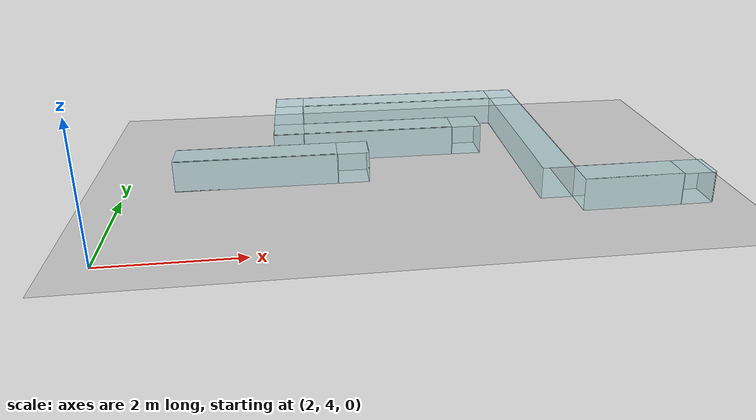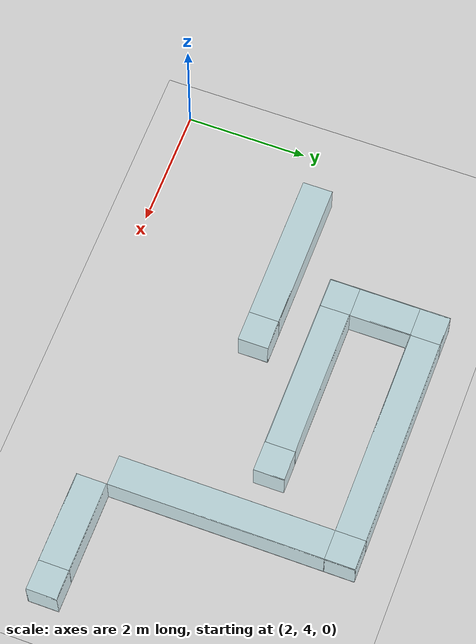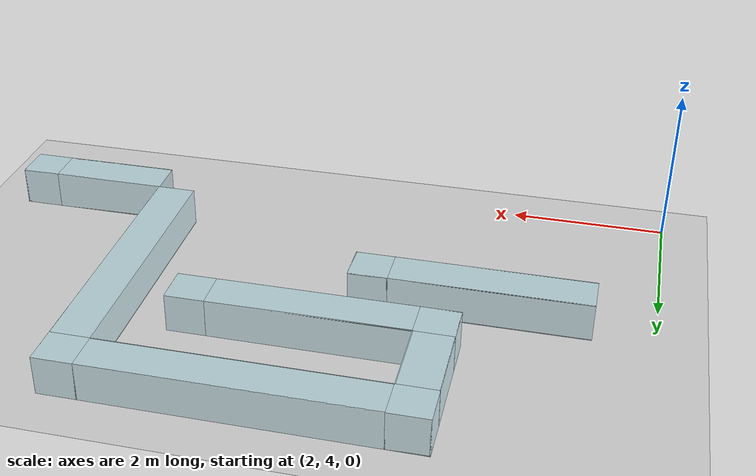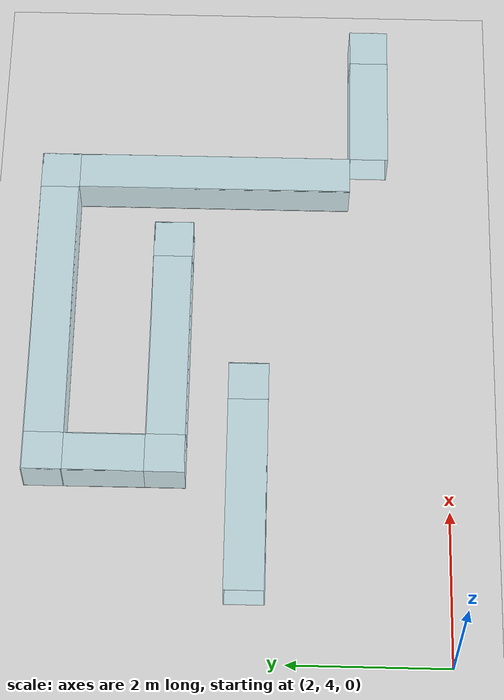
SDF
<sdf version="1.8">
 <world name="demo">
  <model name="ground_plane">
   <static>true</static>
   <link name="link">
    <collision name="collision">
     <geometry><plane><normal>0 0 1</normal><size>100 100</size></plane></geometry>
    </collision>
    <visual name="visual">
     <geometry><plane><normal>0 0 1</normal><size>100 100</size></plane></geometry>
     <material>
      <ambient>0.8 0.8 0.8 1</ambient>
      <diffuse>0.8 0.8 0.8 1</diffuse>
      <specular>0.8 0.8 0.8 1</specular>
     </material>
    </visual>
   </link>
  </model>
  <model name="ground_plane">
   <static>true</static>
   <link name="link">
    <collision name="collision">
     <geometry><plane><normal>0 0 1</normal><size>100 100</size></plane></geometry>
    </collision>
    <visual name="visual">
     <geometry><plane><normal>0 0 1</normal><size>100 100</size></plane></geometry>
     <material>
      <ambient>0.6 0.85 0.9 0.4</ambient>
      <diffuse>0.6 0.85 0.9 0.4</diffuse>
      <specular>0.1 0.1 0.1 1</specular>
      <emissive>0 0 0 1</emissive>
     </material>
    </visual>
   </link>
  </model>
  <model name="T15">
   <pose>4.000000 6.500000 0.250000 0.000000 0.000000 0.000000</pose>
   <static>true</static>
   <link name="link">
    <collision name="col_side_posY">
     <pose>0.000000 0.245000 0.000000 0.000000 0.000000 0.000000</pose>
     <geometry><box><size>2.500000 0.010000 0.500000</size></box></geometry>
    </collision>
    <visual name="vis_col_side_posY">
     <pose>0.000000 0.245000 0.000000 0.000000 0.000000 0.000000</pose>
     <geometry><box><size>2.500000 0.010000 0.500000</size></box></geometry>
     <material>
      <ambient>0.6 0.85 0.9 0.4</ambient>
      <diffuse>0.6 0.85 0.9 0.4</diffuse>
      <specular>0.1 0.1 0.1 1</specular>
      <emissive>0 0 0 1</emissive>
     </material>
    </visual>
    <collision name="col_side_negY">
     <pose>0.000000 -0.245000 0.000000 0.000000 0.000000 0.000000</pose>
     <geometry><box><size>2.500000 0.010000 0.500000</size></box></geometry>
    </collision>
    <visual name="vis_col_side_negY">
     <pose>0.000000 -0.245000 0.000000 0.000000 0.000000 0.000000</pose>
     <geometry><box><size>2.500000 0.010000 0.500000</size></box></geometry>
     <material>
      <ambient>0.6 0.85 0.9 0.4</ambient>
      <diffuse>0.6 0.85 0.9 0.4</diffuse>
      <specular>0.1 0.1 0.1 1</specular>
      <emissive>0 0 0 1</emissive>
     </material>
    </visual>
    <collision name="col_top">
     <pose>0.000000 0.000000 0.245000 0.000000 0.000000 0.000000</pose>
     <geometry><box><size>2.500000 0.500000 0.010000</size></box></geometry>
    </collision>
    <visual name="vis_col_top">
     <pose>0.000000 0.000000 0.245000 0.000000 0.000000 0.000000</pose>
     <geometry><box><size>2.500000 0.500000 0.010000</size></box></geometry>
     <material>
      <ambient>0.6 0.85 0.9 0.4</ambient>
      <diffuse>0.6 0.85 0.9 0.4</diffuse>
      <specular>0.1 0.1 0.1 1</specular>
      <emissive>0 0 0 1</emissive>
     </material>
    </visual>
    <collision name="col_bottom">
     <pose>0.000000 0.000000 -0.245000 0.000000 0.000000 0.000000</pose>
     <geometry><box><size>2.500000 0.500000 0.010000</size></box></geometry>
    </collision>
    <visual name="vis_col_bottom">
     <pose>0.000000 0.000000 -0.245000 0.000000 0.000000 0.000000</pose>
     <geometry><box><size>2.500000 0.500000 0.010000</size></box></geometry>
     <material>
      <ambient>0.6 0.85 0.9 0.4</ambient>
      <diffuse>0.6 0.85 0.9 0.4</diffuse>
      <specular>0.1 0.1 0.1 1</specular>
      <emissive>0 0 0 1</emissive>
     </material>
    </visual>
   </link>
  </model>
  <model name="T19">
   <pose>6.000000 7.500000 0.250000 0.000000 0.000000 0.000000</pose>
   <static>true</static>
   <link name="link">
    <collision name="col_side_posY">
     <pose>0.000000 0.245000 0.000000 0.000000 0.000000 0.000000</pose>
     <geometry><box><size>2.500000 0.010000 0.500000</size></box></geometry>
    </collision>
    <visual name="vis_col_side_posY">
     <pose>0.000000 0.245000 0.000000 0.000000 0.000000 0.000000</pose>
     <geometry><box><size>2.500000 0.010000 0.500000</size></box></geometry>
     <material>
      <ambient>0.6 0.85 0.9 0.4</ambient>
      <diffuse>0.6 0.85 0.9 0.4</diffuse>
      <specular>0.1 0.1 0.1 1</specular>
      <emissive>0 0 0 1</emissive>
     </material>
    </visual>
    <collision name="col_side_negY">
     <pose>0.000000 -0.245000 0.000000 0.000000 0.000000 0.000000</pose>
     <geometry><box><size>2.500000 0.010000 0.500000</size></box></geometry>
    </collision>
    <visual name="vis_col_side_negY">
     <pose>0.000000 -0.245000 0.000000 0.000000 0.000000 0.000000</pose>
     <geometry><box><size>2.500000 0.010000 0.500000</size></box></geometry>
     <material>
      <ambient>0.6 0.85 0.9 0.4</ambient>
      <diffuse>0.6 0.85 0.9 0.4</diffuse>
      <specular>0.1 0.1 0.1 1</specular>
      <emissive>0 0 0 1</emissive>
     </material>
    </visual>
    <collision name="col_top">
     <pose>0.000000 0.000000 0.245000 0.000000 0.000000 0.000000</pose>
     <geometry><box><size>2.500000 0.500000 0.010000</size></box></geometry>
    </collision>
    <visual name="vis_col_top">
     <pose>0.000000 0.000000 0.245000 0.000000 0.000000 0.000000</pose>
     <geometry><box><size>2.500000 0.500000 0.010000</size></box></geometry>
     <material>
      <ambient>0.6 0.85 0.9 0.4</ambient>
      <diffuse>0.6 0.85 0.9 0.4</diffuse>
      <specular>0.1 0.1 0.1 1</specular>
      <emissive>0 0 0 1</emissive>
     </material>
    </visual>
    <collision name="col_bottom">
     <pose>0.000000 0.000000 -0.245000 0.000000 0.000000 0.000000</pose>
     <geometry><box><size>2.500000 0.500000 0.010000</size></box></geometry>
    </collision>
    <visual name="vis_col_bottom">
     <pose>0.000000 0.000000 -0.245000 0.000000 0.000000 0.000000</pose>
     <geometry><box><size>2.500000 0.500000 0.010000</size></box></geometry>
     <material>
      <ambient>0.6 0.85 0.9 0.4</ambient>
      <diffuse>0.6 0.85 0.9 0.4</diffuse>
      <specular>0.1 0.1 0.1 1</specular>
      <emissive>0 0 0 1</emissive>
     </material>
    </visual>
   </link>
  </model>
  <model name="T20">
   <pose>4.500000 8.250000 0.250000 0.000000 0.000000 0.000000</pose>
   <static>true</static>
   <link name="link">
    <collision name="col_side_posX">
     <pose>0.245000 0.000000 0.000000 0.000000 0.000000 0.000000</pose>
     <geometry><box><size>0.010000 1.000000 0.500000</size></box></geometry>
    </collision>
    <visual name="vis_col_side_posX">
     <pose>0.245000 0.000000 0.000000 0.000000 0.000000 0.000000</pose>
     <geometry><box><size>0.010000 1.000000 0.500000</size></box></geometry>
     <material>
      <ambient>0.6 0.85 0.9 0.4</ambient>
      <diffuse>0.6 0.85 0.9 0.4</diffuse>
      <specular>0.1 0.1 0.1 1</specular>
      <emissive>0 0 0 1</emissive>
     </material>
    </visual>
    <collision name="col_side_negX">
     <pose>-0.245000 0.000000 0.000000 0.000000 0.000000 0.000000</pose>
     <geometry><box><size>0.010000 1.000000 0.500000</size></box></geometry>
    </collision>
    <visual name="vis_col_side_negX">
     <pose>-0.245000 0.000000 0.000000 0.000000 0.000000 0.000000</pose>
     <geometry><box><size>0.010000 1.000000 0.500000</size></box></geometry>
     <material>
      <ambient>0.6 0.85 0.9 0.4</ambient>
      <diffuse>0.6 0.85 0.9 0.4</diffuse>
      <specular>0.1 0.1 0.1 1</specular>
      <emissive>0 0 0 1</emissive>
     </material>
    </visual>
    <collision name="col_top">
     <pose>0.000000 0.000000 0.245000 0.000000 0.000000 0.000000</pose>
     <geometry><box><size>0.500000 1.000000 0.010000</size></box></geometry>
    </collision>
    <visual name="vis_col_top">
     <pose>0.000000 0.000000 0.245000 0.000000 0.000000 0.000000</pose>
     <geometry><box><size>0.500000 1.000000 0.010000</size></box></geometry>
     <material>
      <ambient>0.6 0.85 0.9 0.4</ambient>
      <diffuse>0.6 0.85 0.9 0.4</diffuse>
      <specular>0.1 0.1 0.1 1</specular>
      <emissive>0 0 0 1</emissive>
     </material>
    </visual>
    <collision name="col_bottom">
     <pose>0.000000 0.000000 -0.245000 0.000000 0.000000 0.000000</pose>
     <geometry><box><size>0.500000 1.000000 0.010000</size></box></geometry>
    </collision>
    <visual name="vis_col_bottom">
     <pose>0.000000 0.000000 -0.245000 0.000000 0.000000 0.000000</pose>
     <geometry><box><size>0.500000 1.000000 0.010000</size></box></geometry>
     <material>
      <ambient>0.6 0.85 0.9 0.4</ambient>
      <diffuse>0.6 0.85 0.9 0.4</diffuse>
      <specular>0.1 0.1 0.1 1</specular>
      <emissive>0 0 0 1</emissive>
     </material>
    </visual>
   </link>
  </model>
  <model name="T21">
   <pose>6.500000 9.000000 0.250000 0.000000 0.000000 0.000000</pose>
   <static>true</static>
   <link name="link">
    <collision name="col_side_posY">
     <pose>0.000000 0.245000 0.000000 0.000000 0.000000 0.000000</pose>
     <geometry><box><size>3.500000 0.010000 0.500000</size></box></geometry>
    </collision>
    <visual name="vis_col_side_posY">
     <pose>0.000000 0.245000 0.000000 0.000000 0.000000 0.000000</pose>
     <geometry><box><size>3.500000 0.010000 0.500000</size></box></geometry>
     <material>
      <ambient>0.6 0.85 0.9 0.4</ambient>
      <diffuse>0.6 0.85 0.9 0.4</diffuse>
      <specular>0.1 0.1 0.1 1</specular>
      <emissive>0 0 0 1</emissive>
     </material>
    </visual>
    <collision name="col_side_negY">
     <pose>0.000000 -0.245000 0.000000 0.000000 0.000000 0.000000</pose>
     <geometry><box><size>3.500000 0.010000 0.500000</size></box></geometry>
    </collision>
    <visual name="vis_col_side_negY">
     <pose>0.000000 -0.245000 0.000000 0.000000 0.000000 0.000000</pose>
     <geometry><box><size>3.500000 0.010000 0.500000</size></box></geometry>
     <material>
      <ambient>0.6 0.85 0.9 0.4</ambient>
      <diffuse>0.6 0.85 0.9 0.4</diffuse>
      <specular>0.1 0.1 0.1 1</specular>
      <emissive>0 0 0 1</emissive>
     </material>
    </visual>
    <collision name="col_top">
     <pose>0.000000 0.000000 0.245000 0.000000 0.000000 0.000000</pose>
     <geometry><box><size>3.500000 0.500000 0.010000</size></box></geometry>
    </collision>
    <visual name="vis_col_top">
     <pose>0.000000 0.000000 0.245000 0.000000 0.000000 0.000000</pose>
     <geometry><box><size>3.500000 0.500000 0.010000</size></box></geometry>
     <material>
      <ambient>0.6 0.85 0.9 0.4</ambient>
      <diffuse>0.6 0.85 0.9 0.4</diffuse>
      <specular>0.1 0.1 0.1 1</specular>
      <emissive>0 0 0 1</emissive>
     </material>
    </visual>
    <collision name="col_bottom">
     <pose>0.000000 0.000000 -0.245000 0.000000 0.000000 0.000000</pose>
     <geometry><box><size>3.500000 0.500000 0.010000</size></box></geometry>
    </collision>
    <visual name="vis_col_bottom">
     <pose>0.000000 0.000000 -0.245000 0.000000 0.000000 0.000000</pose>
     <geometry><box><size>3.500000 0.500000 0.010000</size></box></geometry>
     <material>
      <ambient>0.6 0.85 0.9 0.4</ambient>
      <diffuse>0.6 0.85 0.9 0.4</diffuse>
      <specular>0.1 0.1 0.1 1</specular>
      <emissive>0 0 0 1</emissive>
     </material>
    </visual>
   </link>
  </model>
  <model name="T22">
   <pose>8.500000 7.000000 0.250000 0.000000 0.000000 0.000000</pose>
   <static>true</static>
   <link name="link">
    <collision name="col_side_posX">
     <pose>0.245000 0.000000 0.000000 0.000000 0.000000 0.000000</pose>
     <geometry><box><size>0.010000 3.500000 0.500000</size></box></geometry>
    </collision>
    <visual name="vis_col_side_posX">
     <pose>0.245000 0.000000 0.000000 0.000000 0.000000 0.000000</pose>
     <geometry><box><size>0.010000 3.500000 0.500000</size></box></geometry>
     <material>
      <ambient>0.6 0.85 0.9 0.4</ambient>
      <diffuse>0.6 0.85 0.9 0.4</diffuse>
      <specular>0.1 0.1 0.1 1</specular>
      <emissive>0 0 0 1</emissive>
     </material>
    </visual>
    <collision name="col_side_negX">
     <pose>-0.245000 0.000000 0.000000 0.000000 0.000000 0.000000</pose>
     <geometry><box><size>0.010000 3.500000 0.500000</size></box></geometry>
    </collision>
    <visual name="vis_col_side_negX">
     <pose>-0.245000 0.000000 0.000000 0.000000 0.000000 0.000000</pose>
     <geometry><box><size>0.010000 3.500000 0.500000</size></box></geometry>
     <material>
      <ambient>0.6 0.85 0.9 0.4</ambient>
      <diffuse>0.6 0.85 0.9 0.4</diffuse>
      <specular>0.1 0.1 0.1 1</specular>
      <emissive>0 0 0 1</emissive>
     </material>
    </visual>
    <collision name="col_top">
     <pose>0.000000 0.000000 0.245000 0.000000 0.000000 0.000000</pose>
     <geometry><box><size>0.500000 3.500000 0.010000</size></box></geometry>
    </collision>
    <visual name="vis_col_top">
     <pose>0.000000 0.000000 0.245000 0.000000 0.000000 0.000000</pose>
     <geometry><box><size>0.500000 3.500000 0.010000</size></box></geometry>
     <material>
      <ambient>0.6 0.85 0.9 0.4</ambient>
      <diffuse>0.6 0.85 0.9 0.4</diffuse>
      <specular>0.1 0.1 0.1 1</specular>
      <emissive>0 0 0 1</emissive>
     </material>
    </visual>
    <collision name="col_bottom">
     <pose>0.000000 0.000000 -0.245000 0.000000 0.000000 0.000000</pose>
     <geometry><box><size>0.500000 3.500000 0.010000</size></box></geometry>
    </collision>
    <visual name="vis_col_bottom">
     <pose>0.000000 0.000000 -0.245000 0.000000 0.000000 0.000000</pose>
     <geometry><box><size>0.500000 3.500000 0.010000</size></box></geometry>
     <material>
      <ambient>0.6 0.85 0.9 0.4</ambient>
      <diffuse>0.6 0.85 0.9 0.4</diffuse>
      <specular>0.1 0.1 0.1 1</specular>
      <emissive>0 0 0 1</emissive>
     </material>
    </visual>
   </link>
  </model>
  <model name="T23">
   <pose>9.500000 5.000000 0.250000 0.000000 0.000000 0.000000</pose>
   <static>true</static>
   <link name="link">
    <collision name="col_side_posY">
     <pose>0.000000 0.245000 0.000000 0.000000 0.000000 0.000000</pose>
     <geometry><box><size>1.500000 0.010000 0.500000</size></box></geometry>
    </collision>
    <visual name="vis_col_side_posY">
     <pose>0.000000 0.245000 0.000000 0.000000 0.000000 0.000000</pose>
     <geometry><box><size>1.500000 0.010000 0.500000</size></box></geometry>
     <material>
      <ambient>0.6 0.85 0.9 0.4</ambient>
      <diffuse>0.6 0.85 0.9 0.4</diffuse>
      <specular>0.1 0.1 0.1 1</specular>
      <emissive>0 0 0 1</emissive>
     </material>
    </visual>
    <collision name="col_side_negY">
     <pose>0.000000 -0.245000 0.000000 0.000000 0.000000 0.000000</pose>
     <geometry><box><size>1.500000 0.010000 0.500000</size></box></geometry>
    </collision>
    <visual name="vis_col_side_negY">
     <pose>0.000000 -0.245000 0.000000 0.000000 0.000000 0.000000</pose>
     <geometry><box><size>1.500000 0.010000 0.500000</size></box></geometry>
     <material>
      <ambient>0.6 0.85 0.9 0.4</ambient>
      <diffuse>0.6 0.85 0.9 0.4</diffuse>
      <specular>0.1 0.1 0.1 1</specular>
      <emissive>0 0 0 1</emissive>
     </material>
    </visual>
    <collision name="col_top">
     <pose>0.000000 0.000000 0.245000 0.000000 0.000000 0.000000</pose>
     <geometry><box><size>1.500000 0.500000 0.010000</size></box></geometry>
    </collision>
    <visual name="vis_col_top">
     <pose>0.000000 0.000000 0.245000 0.000000 0.000000 0.000000</pose>
     <geometry><box><size>1.500000 0.500000 0.010000</size></box></geometry>
     <material>
      <ambient>0.6 0.85 0.9 0.4</ambient>
      <diffuse>0.6 0.85 0.9 0.4</diffuse>
      <specular>0.1 0.1 0.1 1</specular>
      <emissive>0 0 0 1</emissive>
     </material>
    </visual>
    <collision name="col_bottom">
     <pose>0.000000 0.000000 -0.245000 0.000000 0.000000 0.000000</pose>
     <geometry><box><size>1.500000 0.500000 0.010000</size></box></geometry>
    </collision>
    <visual name="vis_col_bottom">
     <pose>0.000000 0.000000 -0.245000 0.000000 0.000000 0.000000</pose>
     <geometry><box><size>1.500000 0.500000 0.010000</size></box></geometry>
     <material>
      <ambient>0.6 0.85 0.9 0.4</ambient>
      <diffuse>0.6 0.85 0.9 0.4</diffuse>
      <specular>0.1 0.1 0.1 1</specular>
      <emissive>0 0 0 1</emissive>
     </material>
    </visual>
   </link>
  </model>
  <model name="C15">
   <pose>5.500000 6.500000 0.250000 0.000000 0.000000 0.000000</pose>
   <static>true</static>
   <link name="link">
    <collision name="wall_posX">
     <pose>0.245000 0.000000 0.000000 0.000000 0.000000 0.000000</pose>
     <geometry><box><size>0.010000 0.500000 0.500000</size></box></geometry>
    </collision>
    <visual name="vis_wall_posX">
     <pose>0.245000 0.000000 0.000000 0.000000 0.000000 0.000000</pose>
     <geometry><box><size>0.010000 0.500000 0.500000</size></box></geometry>
     <material>
      <ambient>0.6 0.85 0.9 0.4</ambient>
      <diffuse>0.6 0.85 0.9 0.4</diffuse>
      <specular>0.1 0.1 0.1 1</specular>
      <emissive>0 0 0 1</emissive>
     </material>
    </visual>
    <collision name="wall_posY">
     <pose>0.000000 0.245000 0.000000 0.000000 0.000000 0.000000</pose>
     <geometry><box><size>0.500000 0.010000 0.500000</size></box></geometry>
    </collision>
    <visual name="vis_wall_posY">
     <pose>0.000000 0.245000 0.000000 0.000000 0.000000 0.000000</pose>
     <geometry><box><size>0.500000 0.010000 0.500000</size></box></geometry>
     <material>
      <ambient>0.6 0.85 0.9 0.4</ambient>
      <diffuse>0.6 0.85 0.9 0.4</diffuse>
      <specular>0.1 0.1 0.1 1</specular>
      <emissive>0 0 0 1</emissive>
     </material>
    </visual>
    <collision name="wall_posZ">
     <pose>0.000000 0.000000 0.245000 0.000000 0.000000 0.000000</pose>
     <geometry><box><size>0.500000 0.500000 0.010000</size></box></geometry>
    </collision>
    <visual name="vis_wall_posZ">
     <pose>0.000000 0.000000 0.245000 0.000000 0.000000 0.000000</pose>
     <geometry><box><size>0.500000 0.500000 0.010000</size></box></geometry>
     <material>
      <ambient>0.6 0.85 0.9 0.4</ambient>
      <diffuse>0.6 0.85 0.9 0.4</diffuse>
      <specular>0.1 0.1 0.1 1</specular>
      <emissive>0 0 0 1</emissive>
     </material>
    </visual>
    <collision name="wall_negZ">
     <pose>0.000000 0.000000 -0.245000 0.000000 0.000000 0.000000</pose>
     <geometry><box><size>0.500000 0.500000 0.010000</size></box></geometry>
    </collision>
    <visual name="vis_wall_negZ">
     <pose>0.000000 0.000000 -0.245000 0.000000 0.000000 0.000000</pose>
     <geometry><box><size>0.500000 0.500000 0.010000</size></box></geometry>
     <material>
      <ambient>0.6 0.85 0.9 0.4</ambient>
      <diffuse>0.6 0.85 0.9 0.4</diffuse>
      <specular>0.1 0.1 0.1 1</specular>
      <emissive>0 0 0 1</emissive>
     </material>
    </visual>
    <collision name="corner_pXmY">
     <pose>0.245000 -0.245000 0.000000 0.000000 0.000000 0.000000</pose>
     <geometry><box><size>0.010000 0.010000 0.500000</size></box></geometry>
    </collision>
    <visual name="vis_corner_pXmY">
     <pose>0.245000 -0.245000 0.000000 0.000000 0.000000 0.000000</pose>
     <geometry><box><size>0.010000 0.010000 0.500000</size></box></geometry>
     <material>
      <ambient>0.6 0.85 0.9 0.4</ambient>
      <diffuse>0.6 0.85 0.9 0.4</diffuse>
      <specular>0.1 0.1 0.1 1</specular>
      <emissive>0 0 0 1</emissive>
     </material>
    </visual>
    <collision name="corner_mXpY">
     <pose>-0.245000 0.245000 0.000000 0.000000 0.000000 0.000000</pose>
     <geometry><box><size>0.010000 0.010000 0.500000</size></box></geometry>
    </collision>
    <visual name="vis_corner_mXpY">
     <pose>-0.245000 0.245000 0.000000 0.000000 0.000000 0.000000</pose>
     <geometry><box><size>0.010000 0.010000 0.500000</size></box></geometry>
     <material>
      <ambient>0.6 0.85 0.9 0.4</ambient>
      <diffuse>0.6 0.85 0.9 0.4</diffuse>
      <specular>0.1 0.1 0.1 1</specular>
      <emissive>0 0 0 1</emissive>
     </material>
    </visual>
    <collision name="corner_mXmY">
     <pose>-0.245000 -0.245000 0.000000 0.000000 0.000000 0.000000</pose>
     <geometry><box><size>0.010000 0.010000 0.500000</size></box></geometry>
    </collision>
    <visual name="vis_corner_mXmY">
     <pose>-0.245000 -0.245000 0.000000 0.000000 0.000000 0.000000</pose>
     <geometry><box><size>0.010000 0.010000 0.500000</size></box></geometry>
     <material>
      <ambient>0.6 0.85 0.9 0.4</ambient>
      <diffuse>0.6 0.85 0.9 0.4</diffuse>
      <specular>0.1 0.1 0.1 1</specular>
      <emissive>0 0 0 1</emissive>
     </material>
    </visual>
   </link>
  </model>
  <model name="C18">
   <pose>7.500000 7.500000 0.250000 0.000000 0.000000 0.000000</pose>
   <static>true</static>
   <link name="link">
    <collision name="wall_posX">
     <pose>0.245000 0.000000 0.000000 0.000000 0.000000 0.000000</pose>
     <geometry><box><size>0.010000 0.500000 0.500000</size></box></geometry>
    </collision>
    <visual name="vis_wall_posX">
     <pose>0.245000 0.000000 0.000000 0.000000 0.000000 0.000000</pose>
     <geometry><box><size>0.010000 0.500000 0.500000</size></box></geometry>
     <material>
      <ambient>0.6 0.85 0.9 0.4</ambient>
      <diffuse>0.6 0.85 0.9 0.4</diffuse>
      <specular>0.1 0.1 0.1 1</specular>
      <emissive>0 0 0 1</emissive>
     </material>
    </visual>
    <collision name="wall_posY">
     <pose>0.000000 0.245000 0.000000 0.000000 0.000000 0.000000</pose>
     <geometry><box><size>0.500000 0.010000 0.500000</size></box></geometry>
    </collision>
    <visual name="vis_wall_posY">
     <pose>0.000000 0.245000 0.000000 0.000000 0.000000 0.000000</pose>
     <geometry><box><size>0.500000 0.010000 0.500000</size></box></geometry>
     <material>
      <ambient>0.6 0.85 0.9 0.4</ambient>
      <diffuse>0.6 0.85 0.9 0.4</diffuse>
      <specular>0.1 0.1 0.1 1</specular>
      <emissive>0 0 0 1</emissive>
     </material>
    </visual>
    <collision name="wall_posZ">
     <pose>0.000000 0.000000 0.245000 0.000000 0.000000 0.000000</pose>
     <geometry><box><size>0.500000 0.500000 0.010000</size></box></geometry>
    </collision>
    <visual name="vis_wall_posZ">
     <pose>0.000000 0.000000 0.245000 0.000000 0.000000 0.000000</pose>
     <geometry><box><size>0.500000 0.500000 0.010000</size></box></geometry>
     <material>
      <ambient>0.6 0.85 0.9 0.4</ambient>
      <diffuse>0.6 0.85 0.9 0.4</diffuse>
      <specular>0.1 0.1 0.1 1</specular>
      <emissive>0 0 0 1</emissive>
     </material>
    </visual>
    <collision name="wall_negZ">
     <pose>0.000000 0.000000 -0.245000 0.000000 0.000000 0.000000</pose>
     <geometry><box><size>0.500000 0.500000 0.010000</size></box></geometry>
    </collision>
    <visual name="vis_wall_negZ">
     <pose>0.000000 0.000000 -0.245000 0.000000 0.000000 0.000000</pose>
     <geometry><box><size>0.500000 0.500000 0.010000</size></box></geometry>
     <material>
      <ambient>0.6 0.85 0.9 0.4</ambient>
      <diffuse>0.6 0.85 0.9 0.4</diffuse>
      <specular>0.1 0.1 0.1 1</specular>
      <emissive>0 0 0 1</emissive>
     </material>
    </visual>
    <collision name="corner_pXmY">
     <pose>0.245000 -0.245000 0.000000 0.000000 0.000000 0.000000</pose>
     <geometry><box><size>0.010000 0.010000 0.500000</size></box></geometry>
    </collision>
    <visual name="vis_corner_pXmY">
     <pose>0.245000 -0.245000 0.000000 0.000000 0.000000 0.000000</pose>
     <geometry><box><size>0.010000 0.010000 0.500000</size></box></geometry>
     <material>
      <ambient>0.6 0.85 0.9 0.4</ambient>
      <diffuse>0.6 0.85 0.9 0.4</diffuse>
      <specular>0.1 0.1 0.1 1</specular>
      <emissive>0 0 0 1</emissive>
     </material>
    </visual>
    <collision name="corner_mXpY">
     <pose>-0.245000 0.245000 0.000000 0.000000 0.000000 0.000000</pose>
     <geometry><box><size>0.010000 0.010000 0.500000</size></box></geometry>
    </collision>
    <visual name="vis_corner_mXpY">
     <pose>-0.245000 0.245000 0.000000 0.000000 0.000000 0.000000</pose>
     <geometry><box><size>0.010000 0.010000 0.500000</size></box></geometry>
     <material>
      <ambient>0.6 0.85 0.9 0.4</ambient>
      <diffuse>0.6 0.85 0.9 0.4</diffuse>
      <specular>0.1 0.1 0.1 1</specular>
      <emissive>0 0 0 1</emissive>
     </material>
    </visual>
    <collision name="corner_mXmY">
     <pose>-0.245000 -0.245000 0.000000 0.000000 0.000000 0.000000</pose>
     <geometry><box><size>0.010000 0.010000 0.500000</size></box></geometry>
    </collision>
    <visual name="vis_corner_mXmY">
     <pose>-0.245000 -0.245000 0.000000 0.000000 0.000000 0.000000</pose>
     <geometry><box><size>0.010000 0.010000 0.500000</size></box></geometry>
     <material>
      <ambient>0.6 0.85 0.9 0.4</ambient>
      <diffuse>0.6 0.85 0.9 0.4</diffuse>
      <specular>0.1 0.1 0.1 1</specular>
      <emissive>0 0 0 1</emissive>
     </material>
    </visual>
   </link>
  </model>
  <model name="C19">
   <pose>4.500000 7.500000 0.250000 0.000000 0.000000 0.000000</pose>
   <static>true</static>
   <link name="link">
    <collision name="wall_negX">
     <pose>-0.245000 0.000000 0.000000 0.000000 0.000000 0.000000</pose>
     <geometry><box><size>0.010000 0.500000 0.500000</size></box></geometry>
    </collision>
    <visual name="vis_wall_negX">
     <pose>-0.245000 0.000000 0.000000 0.000000 0.000000 0.000000</pose>
     <geometry><box><size>0.010000 0.500000 0.500000</size></box></geometry>
     <material>
      <ambient>0.6 0.85 0.9 0.4</ambient>
      <diffuse>0.6 0.85 0.9 0.4</diffuse>
      <specular>0.1 0.1 0.1 1</specular>
      <emissive>0 0 0 1</emissive>
     </material>
    </visual>
    <collision name="wall_negY">
     <pose>0.000000 -0.245000 0.000000 0.000000 0.000000 0.000000</pose>
     <geometry><box><size>0.500000 0.010000 0.500000</size></box></geometry>
    </collision>
    <visual name="vis_wall_negY">
     <pose>0.000000 -0.245000 0.000000 0.000000 0.000000 0.000000</pose>
     <geometry><box><size>0.500000 0.010000 0.500000</size></box></geometry>
     <material>
      <ambient>0.6 0.85 0.9 0.4</ambient>
      <diffuse>0.6 0.85 0.9 0.4</diffuse>
      <specular>0.1 0.1 0.1 1</specular>
      <emissive>0 0 0 1</emissive>
     </material>
    </visual>
    <collision name="wall_posZ">
     <pose>0.000000 0.000000 0.245000 0.000000 0.000000 0.000000</pose>
     <geometry><box><size>0.500000 0.500000 0.010000</size></box></geometry>
    </collision>
    <visual name="vis_wall_posZ">
     <pose>0.000000 0.000000 0.245000 0.000000 0.000000 0.000000</pose>
     <geometry><box><size>0.500000 0.500000 0.010000</size></box></geometry>
     <material>
      <ambient>0.6 0.85 0.9 0.4</ambient>
      <diffuse>0.6 0.85 0.9 0.4</diffuse>
      <specular>0.1 0.1 0.1 1</specular>
      <emissive>0 0 0 1</emissive>
     </material>
    </visual>
    <collision name="wall_negZ">
     <pose>0.000000 0.000000 -0.245000 0.000000 0.000000 0.000000</pose>
     <geometry><box><size>0.500000 0.500000 0.010000</size></box></geometry>
    </collision>
    <visual name="vis_wall_negZ">
     <pose>0.000000 0.000000 -0.245000 0.000000 0.000000 0.000000</pose>
     <geometry><box><size>0.500000 0.500000 0.010000</size></box></geometry>
     <material>
      <ambient>0.6 0.85 0.9 0.4</ambient>
      <diffuse>0.6 0.85 0.9 0.4</diffuse>
      <specular>0.1 0.1 0.1 1</specular>
      <emissive>0 0 0 1</emissive>
     </material>
    </visual>
    <collision name="corner_pXpY">
     <pose>0.245000 0.245000 0.000000 0.000000 0.000000 0.000000</pose>
     <geometry><box><size>0.010000 0.010000 0.500000</size></box></geometry>
    </collision>
    <visual name="vis_corner_pXpY">
     <pose>0.245000 0.245000 0.000000 0.000000 0.000000 0.000000</pose>
     <geometry><box><size>0.010000 0.010000 0.500000</size></box></geometry>
     <material>
      <ambient>0.6 0.85 0.9 0.4</ambient>
      <diffuse>0.6 0.85 0.9 0.4</diffuse>
      <specular>0.1 0.1 0.1 1</specular>
      <emissive>0 0 0 1</emissive>
     </material>
    </visual>
    <collision name="corner_pXmY">
     <pose>0.245000 -0.245000 0.000000 0.000000 0.000000 0.000000</pose>
     <geometry><box><size>0.010000 0.010000 0.500000</size></box></geometry>
    </collision>
    <visual name="vis_corner_pXmY">
     <pose>0.245000 -0.245000 0.000000 0.000000 0.000000 0.000000</pose>
     <geometry><box><size>0.010000 0.010000 0.500000</size></box></geometry>
     <material>
      <ambient>0.6 0.85 0.9 0.4</ambient>
      <diffuse>0.6 0.85 0.9 0.4</diffuse>
      <specular>0.1 0.1 0.1 1</specular>
      <emissive>0 0 0 1</emissive>
     </material>
    </visual>
    <collision name="corner_mXpY">
     <pose>-0.245000 0.245000 0.000000 0.000000 0.000000 0.000000</pose>
     <geometry><box><size>0.010000 0.010000 0.500000</size></box></geometry>
    </collision>
    <visual name="vis_corner_mXpY">
     <pose>-0.245000 0.245000 0.000000 0.000000 0.000000 0.000000</pose>
     <geometry><box><size>0.010000 0.010000 0.500000</size></box></geometry>
     <material>
      <ambient>0.6 0.85 0.9 0.4</ambient>
      <diffuse>0.6 0.85 0.9 0.4</diffuse>
      <specular>0.1 0.1 0.1 1</specular>
      <emissive>0 0 0 1</emissive>
     </material>
    </visual>
   </link>
  </model>
  <model name="C20">
   <pose>4.500000 9.000000 0.250000 0.000000 0.000000 0.000000</pose>
   <static>true</static>
   <link name="link">
    <collision name="wall_negX">
     <pose>-0.245000 0.000000 0.000000 0.000000 0.000000 0.000000</pose>
     <geometry><box><size>0.010000 0.500000 0.500000</size></box></geometry>
    </collision>
    <visual name="vis_wall_negX">
     <pose>-0.245000 0.000000 0.000000 0.000000 0.000000 0.000000</pose>
     <geometry><box><size>0.010000 0.500000 0.500000</size></box></geometry>
     <material>
      <ambient>0.6 0.85 0.9 0.4</ambient>
      <diffuse>0.6 0.85 0.9 0.4</diffuse>
      <specular>0.1 0.1 0.1 1</specular>
      <emissive>0 0 0 1</emissive>
     </material>
    </visual>
    <collision name="wall_posY">
     <pose>0.000000 0.245000 0.000000 0.000000 0.000000 0.000000</pose>
     <geometry><box><size>0.500000 0.010000 0.500000</size></box></geometry>
    </collision>
    <visual name="vis_wall_posY">
     <pose>0.000000 0.245000 0.000000 0.000000 0.000000 0.000000</pose>
     <geometry><box><size>0.500000 0.010000 0.500000</size></box></geometry>
     <material>
      <ambient>0.6 0.85 0.9 0.4</ambient>
      <diffuse>0.6 0.85 0.9 0.4</diffuse>
      <specular>0.1 0.1 0.1 1</specular>
      <emissive>0 0 0 1</emissive>
     </material>
    </visual>
    <collision name="wall_posZ">
     <pose>0.000000 0.000000 0.245000 0.000000 0.000000 0.000000</pose>
     <geometry><box><size>0.500000 0.500000 0.010000</size></box></geometry>
    </collision>
    <visual name="vis_wall_posZ">
     <pose>0.000000 0.000000 0.245000 0.000000 0.000000 0.000000</pose>
     <geometry><box><size>0.500000 0.500000 0.010000</size></box></geometry>
     <material>
      <ambient>0.6 0.85 0.9 0.4</ambient>
      <diffuse>0.6 0.85 0.9 0.4</diffuse>
      <specular>0.1 0.1 0.1 1</specular>
      <emissive>0 0 0 1</emissive>
     </material>
    </visual>
    <collision name="wall_negZ">
     <pose>0.000000 0.000000 -0.245000 0.000000 0.000000 0.000000</pose>
     <geometry><box><size>0.500000 0.500000 0.010000</size></box></geometry>
    </collision>
    <visual name="vis_wall_negZ">
     <pose>0.000000 0.000000 -0.245000 0.000000 0.000000 0.000000</pose>
     <geometry><box><size>0.500000 0.500000 0.010000</size></box></geometry>
     <material>
      <ambient>0.6 0.85 0.9 0.4</ambient>
      <diffuse>0.6 0.85 0.9 0.4</diffuse>
      <specular>0.1 0.1 0.1 1</specular>
      <emissive>0 0 0 1</emissive>
     </material>
    </visual>
    <collision name="corner_pXpY">
     <pose>0.245000 0.245000 0.000000 0.000000 0.000000 0.000000</pose>
     <geometry><box><size>0.010000 0.010000 0.500000</size></box></geometry>
    </collision>
    <visual name="vis_corner_pXpY">
     <pose>0.245000 0.245000 0.000000 0.000000 0.000000 0.000000</pose>
     <geometry><box><size>0.010000 0.010000 0.500000</size></box></geometry>
     <material>
      <ambient>0.6 0.85 0.9 0.4</ambient>
      <diffuse>0.6 0.85 0.9 0.4</diffuse>
      <specular>0.1 0.1 0.1 1</specular>
      <emissive>0 0 0 1</emissive>
     </material>
    </visual>
    <collision name="corner_pXmY">
     <pose>0.245000 -0.245000 0.000000 0.000000 0.000000 0.000000</pose>
     <geometry><box><size>0.010000 0.010000 0.500000</size></box></geometry>
    </collision>
    <visual name="vis_corner_pXmY">
     <pose>0.245000 -0.245000 0.000000 0.000000 0.000000 0.000000</pose>
     <geometry><box><size>0.010000 0.010000 0.500000</size></box></geometry>
     <material>
      <ambient>0.6 0.85 0.9 0.4</ambient>
      <diffuse>0.6 0.85 0.9 0.4</diffuse>
      <specular>0.1 0.1 0.1 1</specular>
      <emissive>0 0 0 1</emissive>
     </material>
    </visual>
    <collision name="corner_mXmY">
     <pose>-0.245000 -0.245000 0.000000 0.000000 0.000000 0.000000</pose>
     <geometry><box><size>0.010000 0.010000 0.500000</size></box></geometry>
    </collision>
    <visual name="vis_corner_mXmY">
     <pose>-0.245000 -0.245000 0.000000 0.000000 0.000000 0.000000</pose>
     <geometry><box><size>0.010000 0.010000 0.500000</size></box></geometry>
     <material>
      <ambient>0.6 0.85 0.9 0.4</ambient>
      <diffuse>0.6 0.85 0.9 0.4</diffuse>
      <specular>0.1 0.1 0.1 1</specular>
      <emissive>0 0 0 1</emissive>
     </material>
    </visual>
   </link>
  </model>
  <model name="C21">
   <pose>8.500000 9.000000 0.250000 0.000000 0.000000 0.000000</pose>
   <static>true</static>
   <link name="link">
    <collision name="wall_posX">
     <pose>0.245000 0.000000 0.000000 0.000000 0.000000 0.000000</pose>
     <geometry><box><size>0.010000 0.500000 0.500000</size></box></geometry>
    </collision>
    <visual name="vis_wall_posX">
     <pose>0.245000 0.000000 0.000000 0.000000 0.000000 0.000000</pose>
     <geometry><box><size>0.010000 0.500000 0.500000</size></box></geometry>
     <material>
      <ambient>0.6 0.85 0.9 0.4</ambient>
      <diffuse>0.6 0.85 0.9 0.4</diffuse>
      <specular>0.1 0.1 0.1 1</specular>
      <emissive>0 0 0 1</emissive>
     </material>
    </visual>
    <collision name="wall_posY">
     <pose>0.000000 0.245000 0.000000 0.000000 0.000000 0.000000</pose>
     <geometry><box><size>0.500000 0.010000 0.500000</size></box></geometry>
    </collision>
    <visual name="vis_wall_posY">
     <pose>0.000000 0.245000 0.000000 0.000000 0.000000 0.000000</pose>
     <geometry><box><size>0.500000 0.010000 0.500000</size></box></geometry>
     <material>
      <ambient>0.6 0.85 0.9 0.4</ambient>
      <diffuse>0.6 0.85 0.9 0.4</diffuse>
      <specular>0.1 0.1 0.1 1</specular>
      <emissive>0 0 0 1</emissive>
     </material>
    </visual>
    <collision name="wall_posZ">
     <pose>0.000000 0.000000 0.245000 0.000000 0.000000 0.000000</pose>
     <geometry><box><size>0.500000 0.500000 0.010000</size></box></geometry>
    </collision>
    <visual name="vis_wall_posZ">
     <pose>0.000000 0.000000 0.245000 0.000000 0.000000 0.000000</pose>
     <geometry><box><size>0.500000 0.500000 0.010000</size></box></geometry>
     <material>
      <ambient>0.6 0.85 0.9 0.4</ambient>
      <diffuse>0.6 0.85 0.9 0.4</diffuse>
      <specular>0.1 0.1 0.1 1</specular>
      <emissive>0 0 0 1</emissive>
     </material>
    </visual>
    <collision name="wall_negZ">
     <pose>0.000000 0.000000 -0.245000 0.000000 0.000000 0.000000</pose>
     <geometry><box><size>0.500000 0.500000 0.010000</size></box></geometry>
    </collision>
    <visual name="vis_wall_negZ">
     <pose>0.000000 0.000000 -0.245000 0.000000 0.000000 0.000000</pose>
     <geometry><box><size>0.500000 0.500000 0.010000</size></box></geometry>
     <material>
      <ambient>0.6 0.85 0.9 0.4</ambient>
      <diffuse>0.6 0.85 0.9 0.4</diffuse>
      <specular>0.1 0.1 0.1 1</specular>
      <emissive>0 0 0 1</emissive>
     </material>
    </visual>
    <collision name="corner_pXmY">
     <pose>0.245000 -0.245000 0.000000 0.000000 0.000000 0.000000</pose>
     <geometry><box><size>0.010000 0.010000 0.500000</size></box></geometry>
    </collision>
    <visual name="vis_corner_pXmY">
     <pose>0.245000 -0.245000 0.000000 0.000000 0.000000 0.000000</pose>
     <geometry><box><size>0.010000 0.010000 0.500000</size></box></geometry>
     <material>
      <ambient>0.6 0.85 0.9 0.4</ambient>
      <diffuse>0.6 0.85 0.9 0.4</diffuse>
      <specular>0.1 0.1 0.1 1</specular>
      <emissive>0 0 0 1</emissive>
     </material>
    </visual>
    <collision name="corner_mXpY">
     <pose>-0.245000 0.245000 0.000000 0.000000 0.000000 0.000000</pose>
     <geometry><box><size>0.010000 0.010000 0.500000</size></box></geometry>
    </collision>
    <visual name="vis_corner_mXpY">
     <pose>-0.245000 0.245000 0.000000 0.000000 0.000000 0.000000</pose>
     <geometry><box><size>0.010000 0.010000 0.500000</size></box></geometry>
     <material>
      <ambient>0.6 0.85 0.9 0.4</ambient>
      <diffuse>0.6 0.85 0.9 0.4</diffuse>
      <specular>0.1 0.1 0.1 1</specular>
      <emissive>0 0 0 1</emissive>
     </material>
    </visual>
    <collision name="corner_mXmY">
     <pose>-0.245000 -0.245000 0.000000 0.000000 0.000000 0.000000</pose>
     <geometry><box><size>0.010000 0.010000 0.500000</size></box></geometry>
    </collision>
    <visual name="vis_corner_mXmY">
     <pose>-0.245000 -0.245000 0.000000 0.000000 0.000000 0.000000</pose>
     <geometry><box><size>0.010000 0.010000 0.500000</size></box></geometry>
     <material>
      <ambient>0.6 0.85 0.9 0.4</ambient>
      <diffuse>0.6 0.85 0.9 0.4</diffuse>
      <specular>0.1 0.1 0.1 1</specular>
      <emissive>0 0 0 1</emissive>
     </material>
    </visual>
   </link>
  </model>
  <model name="C23">
   <pose>10.500000 5.000000 0.250000 0.000000 0.000000 0.000000</pose>
   <static>true</static>
   <link name="link">
    <collision name="wall_posX">
     <pose>0.245000 0.000000 0.000000 0.000000 0.000000 0.000000</pose>
     <geometry><box><size>0.010000 0.500000 0.500000</size></box></geometry>
    </collision>
    <visual name="vis_wall_posX">
     <pose>0.245000 0.000000 0.000000 0.000000 0.000000 0.000000</pose>
     <geometry><box><size>0.010000 0.500000 0.500000</size></box></geometry>
     <material>
      <ambient>0.6 0.85 0.9 0.4</ambient>
      <diffuse>0.6 0.85 0.9 0.4</diffuse>
      <specular>0.1 0.1 0.1 1</specular>
      <emissive>0 0 0 1</emissive>
     </material>
    </visual>
    <collision name="wall_posY">
     <pose>0.000000 0.245000 0.000000 0.000000 0.000000 0.000000</pose>
     <geometry><box><size>0.500000 0.010000 0.500000</size></box></geometry>
    </collision>
    <visual name="vis_wall_posY">
     <pose>0.000000 0.245000 0.000000 0.000000 0.000000 0.000000</pose>
     <geometry><box><size>0.500000 0.010000 0.500000</size></box></geometry>
     <material>
      <ambient>0.6 0.85 0.9 0.4</ambient>
      <diffuse>0.6 0.85 0.9 0.4</diffuse>
      <specular>0.1 0.1 0.1 1</specular>
      <emissive>0 0 0 1</emissive>
     </material>
    </visual>
    <collision name="wall_posZ">
     <pose>0.000000 0.000000 0.245000 0.000000 0.000000 0.000000</pose>
     <geometry><box><size>0.500000 0.500000 0.010000</size></box></geometry>
    </collision>
    <visual name="vis_wall_posZ">
     <pose>0.000000 0.000000 0.245000 0.000000 0.000000 0.000000</pose>
     <geometry><box><size>0.500000 0.500000 0.010000</size></box></geometry>
     <material>
      <ambient>0.6 0.85 0.9 0.4</ambient>
      <diffuse>0.6 0.85 0.9 0.4</diffuse>
      <specular>0.1 0.1 0.1 1</specular>
      <emissive>0 0 0 1</emissive>
     </material>
    </visual>
    <collision name="wall_negZ">
     <pose>0.000000 0.000000 -0.245000 0.000000 0.000000 0.000000</pose>
     <geometry><box><size>0.500000 0.500000 0.010000</size></box></geometry>
    </collision>
    <visual name="vis_wall_negZ">
     <pose>0.000000 0.000000 -0.245000 0.000000 0.000000 0.000000</pose>
     <geometry><box><size>0.500000 0.500000 0.010000</size></box></geometry>
     <material>
      <ambient>0.6 0.85 0.9 0.4</ambient>
      <diffuse>0.6 0.85 0.9 0.4</diffuse>
      <specular>0.1 0.1 0.1 1</specular>
      <emissive>0 0 0 1</emissive>
     </material>
    </visual>
    <collision name="corner_pXmY">
     <pose>0.245000 -0.245000 0.000000 0.000000 0.000000 0.000000</pose>
     <geometry><box><size>0.010000 0.010000 0.500000</size></box></geometry>
    </collision>
    <visual name="vis_corner_pXmY">
     <pose>0.245000 -0.245000 0.000000 0.000000 0.000000 0.000000</pose>
     <geometry><box><size>0.010000 0.010000 0.500000</size></box></geometry>
     <material>
      <ambient>0.6 0.85 0.9 0.4</ambient>
      <diffuse>0.6 0.85 0.9 0.4</diffuse>
      <specular>0.1 0.1 0.1 1</specular>
      <emissive>0 0 0 1</emissive>
     </material>
    </visual>
    <collision name="corner_mXpY">
     <pose>-0.245000 0.245000 0.000000 0.000000 0.000000 0.000000</pose>
     <geometry><box><size>0.010000 0.010000 0.500000</size></box></geometry>
    </collision>
    <visual name="vis_corner_mXpY">
     <pose>-0.245000 0.245000 0.000000 0.000000 0.000000 0.000000</pose>
     <geometry><box><size>0.010000 0.010000 0.500000</size></box></geometry>
     <material>
      <ambient>0.6 0.85 0.9 0.4</ambient>
      <diffuse>0.6 0.85 0.9 0.4</diffuse>
      <specular>0.1 0.1 0.1 1</specular>
      <emissive>0 0 0 1</emissive>
     </material>
    </visual>
    <collision name="corner_mXmY">
     <pose>-0.245000 -0.245000 0.000000 0.000000 0.000000 0.000000</pose>
     <geometry><box><size>0.010000 0.010000 0.500000</size></box></geometry>
    </collision>
    <visual name="vis_corner_mXmY">
     <pose>-0.245000 -0.245000 0.000000 0.000000 0.000000 0.000000</pose>
     <geometry><box><size>0.010000 0.010000 0.500000</size></box></geometry>
     <material>
      <ambient>0.6 0.85 0.9 0.4</ambient>
      <diffuse>0.6 0.85 0.9 0.4</diffuse>
      <specular>0.1 0.1 0.1 1</specular>
      <emissive>0 0 0 1</emissive>
     </material>
    </visual>
   </link>
  </model>
 </world>
</sdf>
